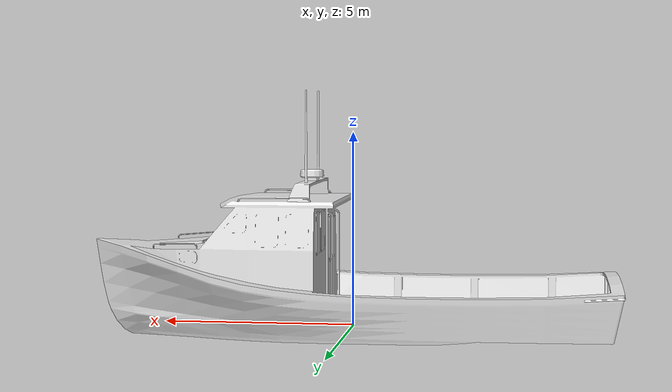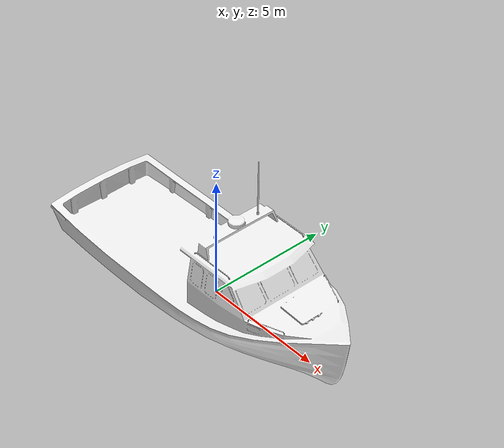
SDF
<?xml version='1.0' ?>
<sdf version="1.6">
  <model name="vessel_a">
    <static>false</static>
    <link name="link">
      <enable_wind>true</enable_wind>
      <inertial>
      <mass>20</mass>
        <!-- Mark only - based on cylinder -->
        <inertia>
          <ixx>1.0</ixx>
          <ixy>0</ixy>
          <ixz>0</ixz>
          <iyy>1.0</iyy>
          <iyz>0</iyz>
          <izz>0.1</izz>
        </inertia>
        </inertial>
      <visual name="visual">
        <pose>0 0 0 0 0 -1.5708</pose>
        <geometry>
          <mesh>
            <uri>meshes/Boat05.dae</uri>
          </mesh>
        </geometry>
        <material>
          <ambient>0.65 0.65 0.65 1</ambient>
          <diffuse>0.92 0.92 0.92 1</diffuse>
          <specular>0.12 0.12 0.12 1</specular>
          <emissive>0 0 0 1</emissive>
        </material>
      </visual>
      <collision name="collision">
        <pose>0 0 0 0 0 -1.5708</pose>
        <geometry>
          <mesh>
            <uri>meshes/Boat05.dae</uri>
          </mesh>
        </geometry>
        <laser_retro>0.52</laser_retro>
      </collision>
    </link>
    <plugin name="vessel_e_buoyancy" filename="libbuoyancy_gazebo_plugin.so">
      <wave_model>ocean_waves</wave_model>
      <fluid_density>1000</fluid_density>
      <fluid_level>0.0</fluid_level>
      <linear_drag>20.0</linear_drag>
      <angular_drag>3.0</angular_drag>
      <buoyancy name="buoyancy_sphere">
        <link_name>link</link_name>
        <pose>0 0 0.2 0 0 0</pose>
        <geometry>
          <sphere>
            <radius>0.3</radius>
          </sphere>
        </geometry>
      </buoyancy>
    </plugin>
    <plugin name="vessel_e_follow" filename="libfollow_plugin.so">
      <link_name>link</link_name>
      <loop_forever>true</loop_forever>
      <waypoints>
	<waypoint>-596.808 285.329 2.308</waypoint>
	<waypoint>-635.461 316.683 2.905</waypoint>
	<waypoint>-687.242 329.161 2.905</waypoint>
      </waypoints>
    </plugin>
  </model>
</sdf>
